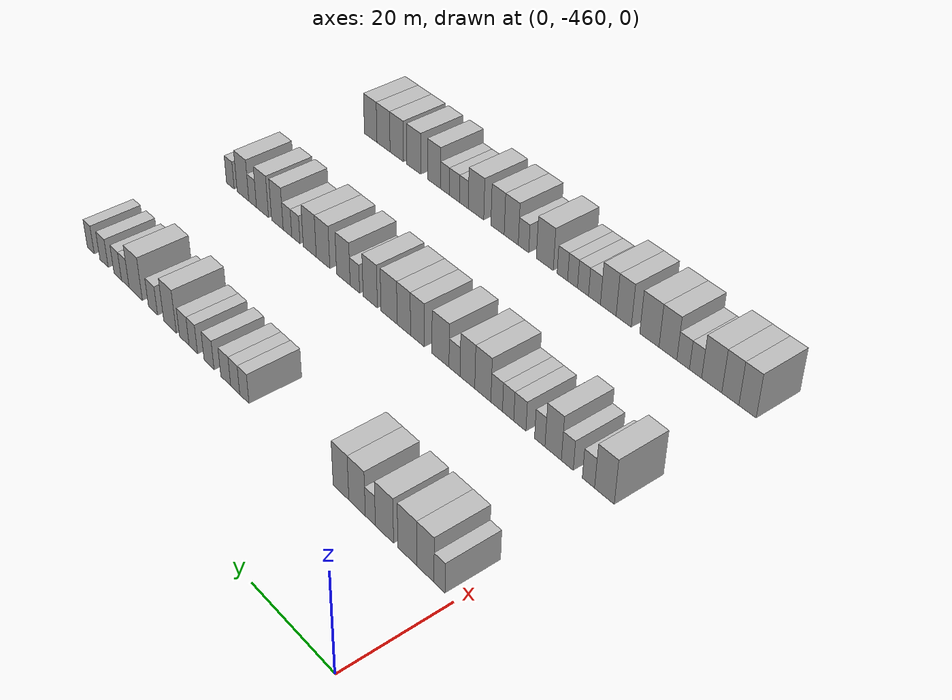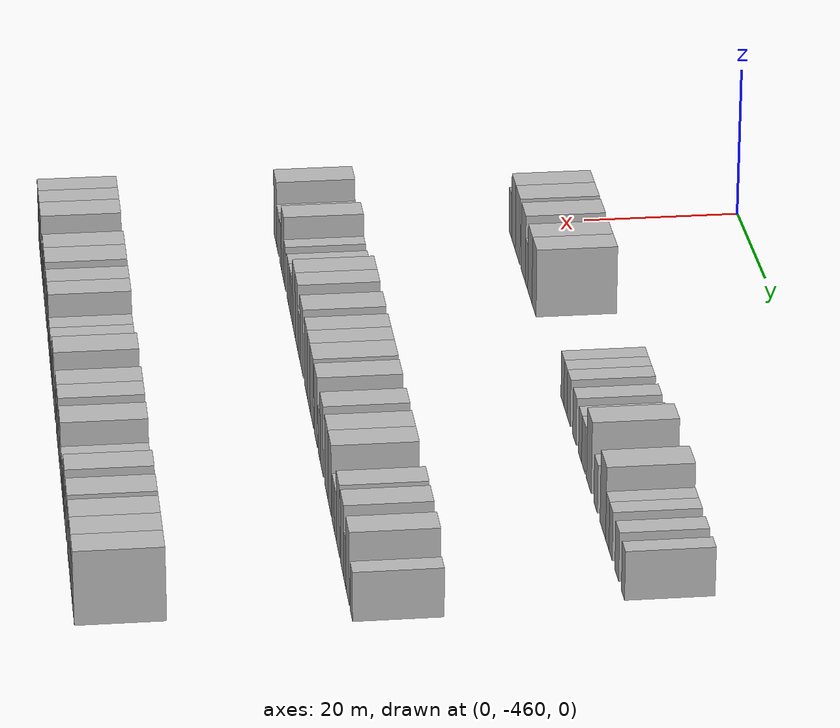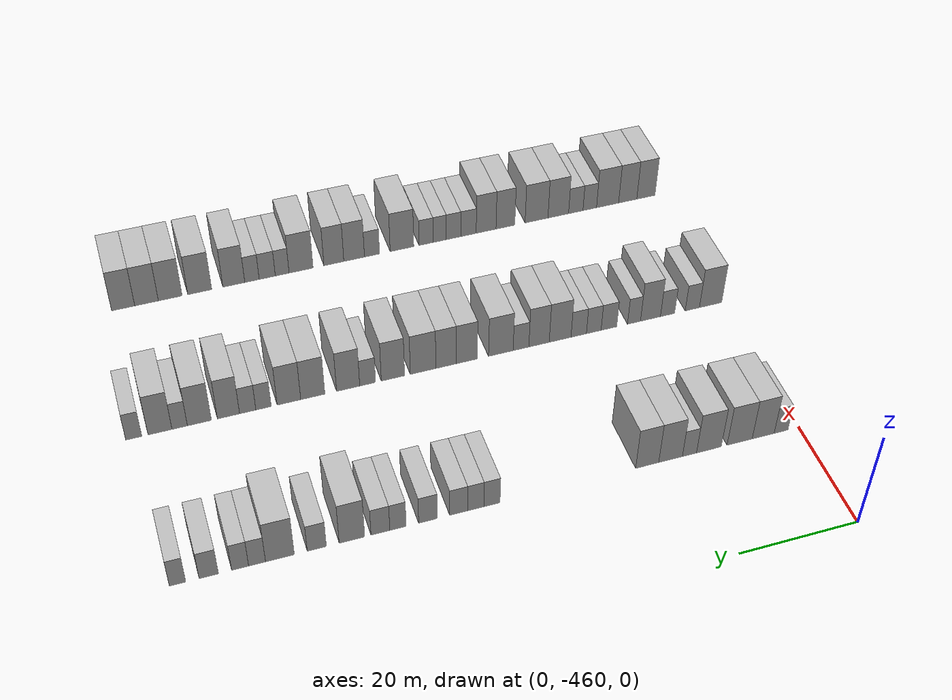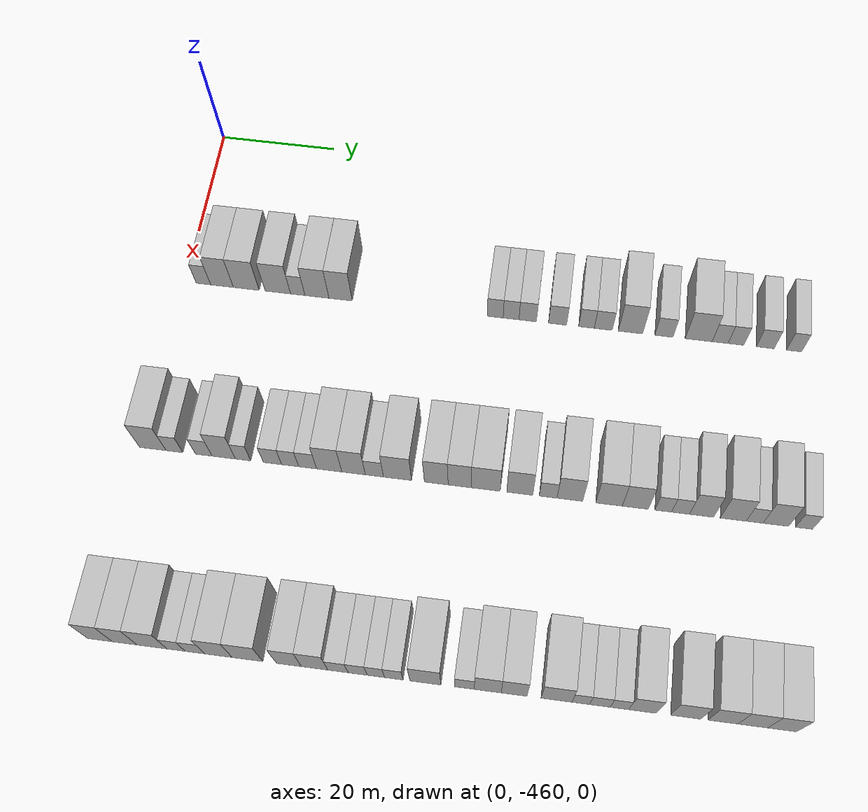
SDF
<sdf version="1.6">
 <world name="default">
  <model name="building_1">
   <static>1</static>
   <pose>25.0000 -456.7684 0 0.000000 0.000000 0.000000</pose>
   <link name="link">
    <pose>0 0 3.00 0 0 0</pose>
    <collision name="collision"><geometry><box><size>10.0000 2.4633 6.0000</size></box></geometry></collision>
    <visual name="visual">
     <cast_shadows>0</cast_shadows>
     <geometry><box><size>10.0000 2.4633 6.0000</size></box></geometry>
     <material>
      <script>
       <uri>model://HANNAS_wall/materials/scripts</uri>
       <uri>model://HANNAS_wall/materials/textures</uri>
       <name>vrc/HANNAS_wall</name>
      </script>
     </material>
    </visual>
   </link>
  </model>
  <model name="building_2">
   <static>1</static>
   <pose>25.0000 -453.5945 0 0.000000 0.000000 0.000000</pose>
   <link name="link">
    <pose>0 0 4.50 0 0 0</pose>
    <collision name="collision"><geometry><box><size>10.0000 3.8844 9.0000</size></box></geometry></collision>
    <visual name="visual">
     <cast_shadows>0</cast_shadows>
     <geometry><box><size>10.0000 3.8844 9.0000</size></box></geometry>
     <material>
      <script>
       <uri>model://HANNAS_wall/materials/scripts</uri>
       <uri>model://HANNAS_wall/materials/textures</uri>
       <name>vrc/HANNAS_wall</name>
      </script>
     </material>
    </visual>
   </link>
  </model>
  <model name="building_3">
   <static>1</static>
   <pose>25.0000 -449.4505 0 0.000000 0.000000 0.000000</pose>
   <link name="link">
    <pose>0 0 4.50 0 0 0</pose>
    <collision name="collision"><geometry><box><size>10.0000 4.4035 9.0000</size></box></geometry></collision>
    <visual name="visual">
     <cast_shadows>0</cast_shadows>
     <geometry><box><size>10.0000 4.4035 9.0000</size></box></geometry>
     <material>
      <script>
       <uri>model://HANNAS_wall/materials/scripts</uri>
       <uri>model://HANNAS_wall/materials/textures</uri>
       <name>vrc/HANNAS_wall</name>
      </script>
     </material>
    </visual>
   </link>
  </model>
  <model name="building_4">
   <static>1</static>
   <pose>25.0000 -444.0910 0 0.000000 0.000000 0.000000</pose>
   <link name="link">
    <pose>0 0 4.50 0 0 0</pose>
    <collision name="collision"><geometry><box><size>10.0000 4.3155 9.0000</size></box></geometry></collision>
    <visual name="visual">
     <cast_shadows>0</cast_shadows>
     <geometry><box><size>10.0000 4.3155 9.0000</size></box></geometry>
     <material>
      <script>
       <uri>model://HANNAS_wall/materials/scripts</uri>
       <uri>model://HANNAS_wall/materials/textures</uri>
       <name>vrc/HANNAS_wall</name>
      </script>
     </material>
    </visual>
   </link>
  </model>
  <model name="building_5">
   <static>1</static>
   <pose>25.0000 -440.7142 0 0.000000 0.000000 0.000000</pose>
   <link name="link">
    <pose>0 0 3.00 0 0 0</pose>
    <collision name="collision"><geometry><box><size>10.0000 2.4382 6.0000</size></box></geometry></collision>
    <visual name="visual">
     <cast_shadows>0</cast_shadows>
     <geometry><box><size>10.0000 2.4382 6.0000</size></box></geometry>
     <material>
      <script>
       <uri>model://HANNAS_wall/materials/scripts</uri>
       <uri>model://HANNAS_wall/materials/textures</uri>
       <name>vrc/HANNAS_wall</name>
      </script>
     </material>
    </visual>
   </link>
  </model>
  <model name="building_6">
   <static>1</static>
   <pose>25.0000 -437.4608 0 0.000000 0.000000 0.000000</pose>
   <link name="link">
    <pose>0 0 4.50 0 0 0</pose>
    <collision name="collision"><geometry><box><size>10.0000 4.0685 9.0000</size></box></geometry></collision>
    <visual name="visual">
     <cast_shadows>0</cast_shadows>
     <geometry><box><size>10.0000 4.0685 9.0000</size></box></geometry>
     <material>
      <script>
       <uri>model://HANNAS_wall/materials/scripts</uri>
       <uri>model://HANNAS_wall/materials/textures</uri>
       <name>vrc/HANNAS_wall</name>
      </script>
     </material>
    </visual>
   </link>
  </model>
  <model name="building_7">
   <static>1</static>
   <pose>25.0000 -433.4576 0 0.000000 0.000000 0.000000</pose>
   <link name="link">
    <pose>0 0 4.50 0 0 0</pose>
    <collision name="collision"><geometry><box><size>10.0000 3.9378 9.0000</size></box></geometry></collision>
    <visual name="visual">
     <cast_shadows>0</cast_shadows>
     <geometry><box><size>10.0000 3.9378 9.0000</size></box></geometry>
     <material>
      <script>
       <uri>model://HANNAS_wall/materials/scripts</uri>
       <uri>model://HANNAS_wall/materials/textures</uri>
       <name>vrc/HANNAS_wall</name>
      </script>
     </material>
    </visual>
   </link>
  </model>
  <model name="building_8">
   <static>1</static>
   <pose>25.0000 -407.5464 0 0.000000 0.000000 0.000000</pose>
   <link name="link">
    <pose>0 0 3.00 0 0 0</pose>
    <collision name="collision"><geometry><box><size>10.0000 2.6282 6.0000</size></box></geometry></collision>
    <visual name="visual">
     <cast_shadows>0</cast_shadows>
     <geometry><box><size>10.0000 2.6282 6.0000</size></box></geometry>
     <material>
      <script>
       <uri>model://HANNAS_wall/materials/scripts</uri>
       <uri>model://HANNAS_wall/materials/textures</uri>
       <name>vrc/HANNAS_wall</name>
      </script>
     </material>
    </visual>
   </link>
  </model>
  <model name="building_9">
   <static>1</static>
   <pose>25.0000 -404.9177 0 0.000000 0.000000 0.000000</pose>
   <link name="link">
    <pose>0 0 3.00 0 0 0</pose>
    <collision name="collision"><geometry><box><size>10.0000 2.6292 6.0000</size></box></geometry></collision>
    <visual name="visual">
     <cast_shadows>0</cast_shadows>
     <geometry><box><size>10.0000 2.6292 6.0000</size></box></geometry>
     <material>
      <script>
       <uri>model://HANNAS_wall/materials/scripts</uri>
       <uri>model://HANNAS_wall/materials/textures</uri>
       <name>vrc/HANNAS_wall</name>
      </script>
     </material>
    </visual>
   </link>
  </model>
  <model name="building_10">
   <static>1</static>
   <pose>25.0000 -402.1576 0 0.000000 0.000000 0.000000</pose>
   <link name="link">
    <pose>0 0 3.00 0 0 0</pose>
    <collision name="collision"><geometry><box><size>10.0000 2.8910 6.0000</size></box></geometry></collision>
    <visual name="visual">
     <cast_shadows>0</cast_shadows>
     <geometry><box><size>10.0000 2.8910 6.0000</size></box></geometry>
     <material>
      <script>
       <uri>model://HANNAS_wall/materials/scripts</uri>
       <uri>model://HANNAS_wall/materials/textures</uri>
       <name>vrc/HANNAS_wall</name>
      </script>
     </material>
    </visual>
   </link>
  </model>
  <model name="building_11">
   <static>1</static>
   <pose>25.0000 -397.2195 0 0.000000 0.000000 0.000000</pose>
   <link name="link">
    <pose>0 0 3.00 0 0 0</pose>
    <collision name="collision"><geometry><box><size>10.0000 2.9851 6.0000</size></box></geometry></collision>
    <visual name="visual">
     <cast_shadows>0</cast_shadows>
     <geometry><box><size>10.0000 2.9851 6.0000</size></box></geometry>
     <material>
      <script>
       <uri>model://HANNAS_wall/materials/scripts</uri>
       <uri>model://HANNAS_wall/materials/textures</uri>
       <name>vrc/HANNAS_wall</name>
      </script>
     </material>
    </visual>
   </link>
  </model>
  <model name="building_12">
   <static>1</static>
   <pose>25.0000 -392.4356 0 0.000000 0.000000 0.000000</pose>
   <link name="link">
    <pose>0 0 3.00 0 0 0</pose>
    <collision name="collision"><geometry><box><size>10.0000 2.5829 6.0000</size></box></geometry></collision>
    <visual name="visual">
     <cast_shadows>0</cast_shadows>
     <geometry><box><size>10.0000 2.5829 6.0000</size></box></geometry>
     <material>
      <script>
       <uri>model://HANNAS_wall/materials/scripts</uri>
       <uri>model://HANNAS_wall/materials/textures</uri>
       <name>vrc/HANNAS_wall</name>
      </script>
     </material>
    </visual>
   </link>
  </model>
  <model name="building_13">
   <static>1</static>
   <pose>25.0000 -389.6625 0 0.000000 0.000000 0.000000</pose>
   <link name="link">
    <pose>0 0 3.00 0 0 0</pose>
    <collision name="collision"><geometry><box><size>10.0000 2.9632 6.0000</size></box></geometry></collision>
    <visual name="visual">
     <cast_shadows>0</cast_shadows>
     <geometry><box><size>10.0000 2.9632 6.0000</size></box></geometry>
     <material>
      <script>
       <uri>model://HANNAS_wall/materials/scripts</uri>
       <uri>model://HANNAS_wall/materials/textures</uri>
       <name>vrc/HANNAS_wall</name>
      </script>
     </material>
    </visual>
   </link>
  </model>
  <model name="building_14">
   <static>1</static>
   <pose>25.0000 -385.1881 0 0.000000 0.000000 0.000000</pose>
   <link name="link">
    <pose>0 0 4.50 0 0 0</pose>
    <collision name="collision"><geometry><box><size>10.0000 3.9857 9.0000</size></box></geometry></collision>
    <visual name="visual">
     <cast_shadows>0</cast_shadows>
     <geometry><box><size>10.0000 3.9857 9.0000</size></box></geometry>
     <material>
      <script>
       <uri>model://HANNAS_wall/materials/scripts</uri>
       <uri>model://HANNAS_wall/materials/textures</uri>
       <name>vrc/HANNAS_wall</name>
      </script>
     </material>
    </visual>
   </link>
  </model>
  <model name="building_15">
   <static>1</static>
   <pose>25.0000 -379.7140 0 0.000000 0.000000 0.000000</pose>
   <link name="link">
    <pose>0 0 3.00 0 0 0</pose>
    <collision name="collision"><geometry><box><size>10.0000 2.9623 6.0000</size></box></geometry></collision>
    <visual name="visual">
     <cast_shadows>0</cast_shadows>
     <geometry><box><size>10.0000 2.9623 6.0000</size></box></geometry>
     <material>
      <script>
       <uri>model://HANNAS_wall/materials/scripts</uri>
       <uri>model://HANNAS_wall/materials/textures</uri>
       <name>vrc/HANNAS_wall</name>
      </script>
     </material>
    </visual>
   </link>
  </model>
  <model name="building_16">
   <static>1</static>
   <pose>25.0000 -374.0256 0 0.000000 0.000000 0.000000</pose>
   <link name="link">
    <pose>0 0 4.50 0 0 0</pose>
    <collision name="collision"><geometry><box><size>10.0000 4.4146 9.0000</size></box></geometry></collision>
    <visual name="visual">
     <cast_shadows>0</cast_shadows>
     <geometry><box><size>10.0000 4.4146 9.0000</size></box></geometry>
     <material>
      <script>
       <uri>model://HANNAS_wall/materials/scripts</uri>
       <uri>model://HANNAS_wall/materials/textures</uri>
       <name>vrc/HANNAS_wall</name>
      </script>
     </material>
    </visual>
   </link>
  </model>
  <model name="building_17">
   <static>1</static>
   <pose>25.0000 -370.5286 0 0.000000 0.000000 0.000000</pose>
   <link name="link">
    <pose>0 0 3.00 0 0 0</pose>
    <collision name="collision"><geometry><box><size>10.0000 2.5793 6.0000</size></box></geometry></collision>
    <visual name="visual">
     <cast_shadows>0</cast_shadows>
     <geometry><box><size>10.0000 2.5793 6.0000</size></box></geometry>
     <material>
      <script>
       <uri>model://HANNAS_wall/materials/scripts</uri>
       <uri>model://HANNAS_wall/materials/textures</uri>
       <name>vrc/HANNAS_wall</name>
      </script>
     </material>
    </visual>
   </link>
  </model>
  <model name="building_18">
   <static>1</static>
   <pose>25.0000 -367.9509 0 0.000000 0.000000 0.000000</pose>
   <link name="link">
    <pose>0 0 3.00 0 0 0</pose>
    <collision name="collision"><geometry><box><size>10.0000 2.5762 6.0000</size></box></geometry></collision>
    <visual name="visual">
     <cast_shadows>0</cast_shadows>
     <geometry><box><size>10.0000 2.5762 6.0000</size></box></geometry>
     <material>
      <script>
       <uri>model://HANNAS_wall/materials/scripts</uri>
       <uri>model://HANNAS_wall/materials/textures</uri>
       <name>vrc/HANNAS_wall</name>
      </script>
     </material>
    </visual>
   </link>
  </model>
  <model name="building_19">
   <static>1</static>
   <pose>25.0000 -363.2097 0 0.000000 0.000000 0.000000</pose>
   <link name="link">
    <pose>0 0 3.00 0 0 0</pose>
    <collision name="collision"><geometry><box><size>10.0000 2.9062 6.0000</size></box></geometry></collision>
    <visual name="visual">
     <cast_shadows>0</cast_shadows>
     <geometry><box><size>10.0000 2.9062 6.0000</size></box></geometry>
     <material>
      <script>
       <uri>model://HANNAS_wall/materials/scripts</uri>
       <uri>model://HANNAS_wall/materials/textures</uri>
       <name>vrc/HANNAS_wall</name>
      </script>
     </material>
    </visual>
   </link>
  </model>
  <model name="building_20">
   <static>1</static>
   <pose>25.0000 -358.5313 0 0.000000 0.000000 0.000000</pose>
   <link name="link">
    <pose>0 0 3.00 0 0 0</pose>
    <collision name="collision"><geometry><box><size>10.0000 2.4505 6.0000</size></box></geometry></collision>
    <visual name="visual">
     <cast_shadows>0</cast_shadows>
     <geometry><box><size>10.0000 2.4505 6.0000</size></box></geometry>
     <material>
      <script>
       <uri>model://HANNAS_wall/materials/scripts</uri>
       <uri>model://HANNAS_wall/materials/textures</uri>
       <name>vrc/HANNAS_wall</name>
      </script>
     </material>
    </visual>
   </link>
  </model>
  <model name="building_228">
   <static>1</static>
   <pose>55.0000 -457.8840 0 0.000000 0.000000 0.000000</pose>
   <link name="link">
    <pose>0 0 4.50 0 0 0</pose>
    <collision name="collision"><geometry><box><size>10.0000 4.2319 9.0000</size></box></geometry></collision>
    <visual name="visual">
     <cast_shadows>0</cast_shadows>
     <geometry><box><size>10.0000 4.2319 9.0000</size></box></geometry>
     <material>
      <script>
       <uri>model://HANNAS_wall/materials/scripts</uri>
       <uri>model://HANNAS_wall/materials/textures</uri>
       <name>vrc/HANNAS_wall</name>
      </script>
     </material>
    </visual>
   </link>
  </model>
  <model name="building_229">
   <static>1</static>
   <pose>55.0000 -454.4255 0 0.000000 0.000000 0.000000</pose>
   <link name="link">
    <pose>0 0 3.00 0 0 0</pose>
    <collision name="collision"><geometry><box><size>10.0000 2.6851 6.0000</size></box></geometry></collision>
    <visual name="visual">
     <cast_shadows>0</cast_shadows>
     <geometry><box><size>10.0000 2.6851 6.0000</size></box></geometry>
     <material>
      <script>
       <uri>model://HANNAS_wall/materials/scripts</uri>
       <uri>model://HANNAS_wall/materials/textures</uri>
       <name>vrc/HANNAS_wall</name>
      </script>
     </material>
    </visual>
   </link>
  </model>
  <model name="building_230">
   <static>1</static>
   <pose>55.0000 -449.7500 0 0.000000 0.000000 0.000000</pose>
   <link name="link">
    <pose>0 0 3.00 0 0 0</pose>
    <collision name="collision"><geometry><box><size>10.0000 2.6659 6.0000</size></box></geometry></collision>
    <visual name="visual">
     <cast_shadows>0</cast_shadows>
     <geometry><box><size>10.0000 2.6659 6.0000</size></box></geometry>
     <material>
      <script>
       <uri>model://HANNAS_wall/materials/scripts</uri>
       <uri>model://HANNAS_wall/materials/textures</uri>
       <name>vrc/HANNAS_wall</name>
      </script>
     </material>
    </visual>
   </link>
  </model>
  <model name="building_231">
   <static>1</static>
   <pose>55.0000 -446.5519 0 0.000000 0.000000 0.000000</pose>
   <link name="link">
    <pose>0 0 4.50 0 0 0</pose>
    <collision name="collision"><geometry><box><size>10.0000 3.7303 9.0000</size></box></geometry></collision>
    <visual name="visual">
     <cast_shadows>0</cast_shadows>
     <geometry><box><size>10.0000 3.7303 9.0000</size></box></geometry>
     <material>
      <script>
       <uri>model://HANNAS_wall/materials/scripts</uri>
       <uri>model://HANNAS_wall/materials/textures</uri>
       <name>vrc/HANNAS_wall</name>
      </script>
     </material>
    </visual>
   </link>
  </model>
  <model name="building_232">
   <static>1</static>
   <pose>55.0000 -443.4809 0 0.000000 0.000000 0.000000</pose>
   <link name="link">
    <pose>0 0 3.00 0 0 0</pose>
    <collision name="collision"><geometry><box><size>10.0000 2.4115 6.0000</size></box></geometry></collision>
    <visual name="visual">
     <cast_shadows>0</cast_shadows>
     <geometry><box><size>10.0000 2.4115 6.0000</size></box></geometry>
     <material>
      <script>
       <uri>model://HANNAS_wall/materials/scripts</uri>
       <uri>model://HANNAS_wall/materials/textures</uri>
       <name>vrc/HANNAS_wall</name>
      </script>
     </material>
    </visual>
   </link>
  </model>
  <model name="building_233">
   <static>1</static>
   <pose>55.0000 -438.8318 0 0.000000 0.000000 0.000000</pose>
   <link name="link">
    <pose>0 0 3.00 0 0 0</pose>
    <collision name="collision"><geometry><box><size>10.0000 2.8868 6.0000</size></box></geometry></collision>
    <visual name="visual">
     <cast_shadows>0</cast_shadows>
     <geometry><box><size>10.0000 2.8868 6.0000</size></box></geometry>
     <material>
      <script>
       <uri>model://HANNAS_wall/materials/scripts</uri>
       <uri>model://HANNAS_wall/materials/textures</uri>
       <name>vrc/HANNAS_wall</name>
      </script>
     </material>
    </visual>
   </link>
  </model>
  <model name="building_234">
   <static>1</static>
   <pose>55.0000 -436.0432 0 0.000000 0.000000 0.000000</pose>
   <link name="link">
    <pose>0 0 3.00 0 0 0</pose>
    <collision name="collision"><geometry><box><size>10.0000 2.6904 6.0000</size></box></geometry></collision>
    <visual name="visual">
     <cast_shadows>0</cast_shadows>
     <geometry><box><size>10.0000 2.6904 6.0000</size></box></geometry>
     <material>
      <script>
       <uri>model://HANNAS_wall/materials/scripts</uri>
       <uri>model://HANNAS_wall/materials/textures</uri>
       <name>vrc/HANNAS_wall</name>
      </script>
     </material>
    </visual>
   </link>
  </model>
  <model name="building_235">
   <static>1</static>
   <pose>55.0000 -433.2865 0 0.000000 0.000000 0.000000</pose>
   <link name="link">
    <pose>0 0 3.00 0 0 0</pose>
    <collision name="collision"><geometry><box><size>10.0000 2.8230 6.0000</size></box></geometry></collision>
    <visual name="visual">
     <cast_shadows>0</cast_shadows>
     <geometry><box><size>10.0000 2.8230 6.0000</size></box></geometry>
     <material>
      <script>
       <uri>model://HANNAS_wall/materials/scripts</uri>
       <uri>model://HANNAS_wall/materials/textures</uri>
       <name>vrc/HANNAS_wall</name>
      </script>
     </material>
    </visual>
   </link>
  </model>
  <model name="building_236">
   <static>1</static>
   <pose>55.0000 -429.8898 0 0.000000 0.000000 0.000000</pose>
   <link name="link">
    <pose>0 0 4.50 0 0 0</pose>
    <collision name="collision"><geometry><box><size>10.0000 3.9704 9.0000</size></box></geometry></collision>
    <visual name="visual">
     <cast_shadows>0</cast_shadows>
     <geometry><box><size>10.0000 3.9704 9.0000</size></box></geometry>
     <material>
      <script>
       <uri>model://HANNAS_wall/materials/scripts</uri>
       <uri>model://HANNAS_wall/materials/textures</uri>
       <name>vrc/HANNAS_wall</name>
      </script>
     </material>
    </visual>
   </link>
  </model>
  <model name="building_237">
   <static>1</static>
   <pose>55.0000 -426.0602 0 0.000000 0.000000 0.000000</pose>
   <link name="link">
    <pose>0 0 4.50 0 0 0</pose>
    <collision name="collision"><geometry><box><size>10.0000 3.6887 9.0000</size></box></geometry></collision>
    <visual name="visual">
     <cast_shadows>0</cast_shadows>
     <geometry><box><size>10.0000 3.6887 9.0000</size></box></geometry>
     <material>
      <script>
       <uri>model://HANNAS_wall/materials/scripts</uri>
       <uri>model://HANNAS_wall/materials/textures</uri>
       <name>vrc/HANNAS_wall</name>
      </script>
     </material>
    </visual>
   </link>
  </model>
  <model name="building_238">
   <static>1</static>
   <pose>55.0000 -422.8041 0 0.000000 0.000000 0.000000</pose>
   <link name="link">
    <pose>0 0 3.00 0 0 0</pose>
    <collision name="collision"><geometry><box><size>10.0000 2.8235 6.0000</size></box></geometry></collision>
    <visual name="visual">
     <cast_shadows>0</cast_shadows>
     <geometry><box><size>10.0000 2.8235 6.0000</size></box></geometry>
     <material>
      <script>
       <uri>model://HANNAS_wall/materials/scripts</uri>
       <uri>model://HANNAS_wall/materials/textures</uri>
       <name>vrc/HANNAS_wall</name>
      </script>
     </material>
    </visual>
   </link>
  </model>
  <model name="building_239">
   <static>1</static>
   <pose>55.0000 -419.1923 0 0.000000 0.000000 0.000000</pose>
   <link name="link">
    <pose>0 0 4.50 0 0 0</pose>
    <collision name="collision"><geometry><box><size>10.0000 4.4000 9.0000</size></box></geometry></collision>
    <visual name="visual">
     <cast_shadows>0</cast_shadows>
     <geometry><box><size>10.0000 4.4000 9.0000</size></box></geometry>
     <material>
      <script>
       <uri>model://HANNAS_wall/materials/scripts</uri>
       <uri>model://HANNAS_wall/materials/textures</uri>
       <name>vrc/HANNAS_wall</name>
      </script>
     </material>
    </visual>
   </link>
  </model>
  <model name="building_240">
   <static>1</static>
   <pose>55.0000 -413.1427 0 0.000000 0.000000 0.000000</pose>
   <link name="link">
    <pose>0 0 4.50 0 0 0</pose>
    <collision name="collision"><geometry><box><size>10.0000 3.6992 9.0000</size></box></geometry></collision>
    <visual name="visual">
     <cast_shadows>0</cast_shadows>
     <geometry><box><size>10.0000 3.6992 9.0000</size></box></geometry>
     <material>
      <script>
       <uri>model://HANNAS_wall/materials/scripts</uri>
       <uri>model://HANNAS_wall/materials/textures</uri>
       <name>vrc/HANNAS_wall</name>
      </script>
     </material>
    </visual>
   </link>
  </model>
  <model name="building_241">
   <static>1</static>
   <pose>55.0000 -409.4834 0 0.000000 0.000000 0.000000</pose>
   <link name="link">
    <pose>0 0 4.50 0 0 0</pose>
    <collision name="collision"><geometry><box><size>10.0000 3.6194 9.0000</size></box></geometry></collision>
    <visual name="visual">
     <cast_shadows>0</cast_shadows>
     <geometry><box><size>10.0000 3.6194 9.0000</size></box></geometry>
     <material>
      <script>
       <uri>model://HANNAS_wall/materials/scripts</uri>
       <uri>model://HANNAS_wall/materials/textures</uri>
       <name>vrc/HANNAS_wall</name>
      </script>
     </material>
    </visual>
   </link>
  </model>
  <model name="building_242">
   <static>1</static>
   <pose>55.0000 -405.4434 0 0.000000 0.000000 0.000000</pose>
   <link name="link">
    <pose>0 0 4.50 0 0 0</pose>
    <collision name="collision"><geometry><box><size>10.0000 4.4608 9.0000</size></box></geometry></collision>
    <visual name="visual">
     <cast_shadows>0</cast_shadows>
     <geometry><box><size>10.0000 4.4608 9.0000</size></box></geometry>
     <material>
      <script>
       <uri>model://HANNAS_wall/materials/scripts</uri>
       <uri>model://HANNAS_wall/materials/textures</uri>
       <name>vrc/HANNAS_wall</name>
      </script>
     </material>
    </visual>
   </link>
  </model>
  <model name="building_243">
   <static>1</static>
   <pose>55.0000 -400.2008 0 0.000000 0.000000 0.000000</pose>
   <link name="link">
    <pose>0 0 4.50 0 0 0</pose>
    <collision name="collision"><geometry><box><size>10.0000 4.0244 9.0000</size></box></geometry></collision>
    <visual name="visual">
     <cast_shadows>0</cast_shadows>
     <geometry><box><size>10.0000 4.0244 9.0000</size></box></geometry>
     <material>
      <script>
       <uri>model://HANNAS_wall/materials/scripts</uri>
       <uri>model://HANNAS_wall/materials/textures</uri>
       <name>vrc/HANNAS_wall</name>
      </script>
     </material>
    </visual>
   </link>
  </model>
  <model name="building_244">
   <static>1</static>
   <pose>55.0000 -395.8288 0 0.000000 0.000000 0.000000</pose>
   <link name="link">
    <pose>0 0 3.00 0 0 0</pose>
    <collision name="collision"><geometry><box><size>10.0000 2.7195 6.0000</size></box></geometry></collision>
    <visual name="visual">
     <cast_shadows>0</cast_shadows>
     <geometry><box><size>10.0000 2.7195 6.0000</size></box></geometry>
     <material>
      <script>
       <uri>model://HANNAS_wall/materials/scripts</uri>
       <uri>model://HANNAS_wall/materials/textures</uri>
       <name>vrc/HANNAS_wall</name>
      </script>
     </material>
    </visual>
   </link>
  </model>
  <model name="building_245">
   <static>1</static>
   <pose>55.0000 -392.4910 0 0.000000 0.000000 0.000000</pose>
   <link name="link">
    <pose>0 0 4.50 0 0 0</pose>
    <collision name="collision"><geometry><box><size>10.0000 3.9562 9.0000</size></box></geometry></collision>
    <visual name="visual">
     <cast_shadows>0</cast_shadows>
     <geometry><box><size>10.0000 3.9562 9.0000</size></box></geometry>
     <material>
      <script>
       <uri>model://HANNAS_wall/materials/scripts</uri>
       <uri>model://HANNAS_wall/materials/textures</uri>
       <name>vrc/HANNAS_wall</name>
      </script>
     </material>
    </visual>
   </link>
  </model>
  <model name="building_246">
   <static>1</static>
   <pose>55.0000 -386.4732 0 0.000000 0.000000 0.000000</pose>
   <link name="link">
    <pose>0 0 4.50 0 0 0</pose>
    <collision name="collision"><geometry><box><size>10.0000 4.0794 9.0000</size></box></geometry></collision>
    <visual name="visual">
     <cast_shadows>0</cast_shadows>
     <geometry><box><size>10.0000 4.0794 9.0000</size></box></geometry>
     <material>
      <script>
       <uri>model://HANNAS_wall/materials/scripts</uri>
       <uri>model://HANNAS_wall/materials/textures</uri>
       <name>vrc/HANNAS_wall</name>
      </script>
     </material>
    </visual>
   </link>
  </model>
  <model name="building_247">
   <static>1</static>
   <pose>55.0000 -382.4496 0 0.000000 0.000000 0.000000</pose>
   <link name="link">
    <pose>0 0 4.50 0 0 0</pose>
    <collision name="collision"><geometry><box><size>10.0000 3.9677 9.0000</size></box></geometry></collision>
    <visual name="visual">
     <cast_shadows>0</cast_shadows>
     <geometry><box><size>10.0000 3.9677 9.0000</size></box></geometry>
     <material>
      <script>
       <uri>model://HANNAS_wall/materials/scripts</uri>
       <uri>model://HANNAS_wall/materials/textures</uri>
       <name>vrc/HANNAS_wall</name>
      </script>
     </material>
    </visual>
   </link>
  </model>
  <model name="building_248">
   <static>1</static>
   <pose>55.0000 -378.1832 0 0.000000 0.000000 0.000000</pose>
   <link name="link">
    <pose>0 0 3.00 0 0 0</pose>
    <collision name="collision"><geometry><box><size>10.0000 2.5650 6.0000</size></box></geometry></collision>
    <visual name="visual">
     <cast_shadows>0</cast_shadows>
     <geometry><box><size>10.0000 2.5650 6.0000</size></box></geometry>
     <material>
      <script>
       <uri>model://HANNAS_wall/materials/scripts</uri>
       <uri>model://HANNAS_wall/materials/textures</uri>
       <name>vrc/HANNAS_wall</name>
      </script>
     </material>
    </visual>
   </link>
  </model>
  <model name="building_249">
   <static>1</static>
   <pose>55.0000 -375.5476 0 0.000000 0.000000 0.000000</pose>
   <link name="link">
    <pose>0 0 3.00 0 0 0</pose>
    <collision name="collision"><geometry><box><size>10.0000 2.7063 6.0000</size></box></geometry></collision>
    <visual name="visual">
     <cast_shadows>0</cast_shadows>
     <geometry><box><size>10.0000 2.7063 6.0000</size></box></geometry>
     <material>
      <script>
       <uri>model://HANNAS_wall/materials/scripts</uri>
       <uri>model://HANNAS_wall/materials/textures</uri>
       <name>vrc/HANNAS_wall</name>
      </script>
     </material>
    </visual>
   </link>
  </model>
  <model name="building_250">
   <static>1</static>
   <pose>55.0000 -372.3600 0 0.000000 0.000000 0.000000</pose>
   <link name="link">
    <pose>0 0 4.50 0 0 0</pose>
    <collision name="collision"><geometry><box><size>10.0000 3.6689 9.0000</size></box></geometry></collision>
    <visual name="visual">
     <cast_shadows>0</cast_shadows>
     <geometry><box><size>10.0000 3.6689 9.0000</size></box></geometry>
     <material>
      <script>
       <uri>model://HANNAS_wall/materials/scripts</uri>
       <uri>model://HANNAS_wall/materials/textures</uri>
       <name>vrc/HANNAS_wall</name>
      </script>
     </material>
    </visual>
   </link>
  </model>
  <model name="building_251">
   <static>1</static>
   <pose>55.0000 -367.5598 0 0.000000 0.000000 0.000000</pose>
   <link name="link">
    <pose>0 0 4.50 0 0 0</pose>
    <collision name="collision"><geometry><box><size>10.0000 3.9316 9.0000</size></box></geometry></collision>
    <visual name="visual">
     <cast_shadows>0</cast_shadows>
     <geometry><box><size>10.0000 3.9316 9.0000</size></box></geometry>
     <material>
      <script>
       <uri>model://HANNAS_wall/materials/scripts</uri>
       <uri>model://HANNAS_wall/materials/textures</uri>
       <name>vrc/HANNAS_wall</name>
      </script>
     </material>
    </visual>
   </link>
  </model>
  <model name="building_252">
   <static>1</static>
   <pose>55.0000 -364.3334 0 0.000000 0.000000 0.000000</pose>
   <link name="link">
    <pose>0 0 3.00 0 0 0</pose>
    <collision name="collision"><geometry><box><size>10.0000 2.5211 6.0000</size></box></geometry></collision>
    <visual name="visual">
     <cast_shadows>0</cast_shadows>
     <geometry><box><size>10.0000 2.5211 6.0000</size></box></geometry>
     <material>
      <script>
       <uri>model://HANNAS_wall/materials/scripts</uri>
       <uri>model://HANNAS_wall/materials/textures</uri>
       <name>vrc/HANNAS_wall</name>
      </script>
     </material>
    </visual>
   </link>
  </model>
  <model name="building_253">
   <static>1</static>
   <pose>55.0000 -361.1275 0 0.000000 0.000000 0.000000</pose>
   <link name="link">
    <pose>0 0 4.50 0 0 0</pose>
    <collision name="collision"><geometry><box><size>10.0000 3.8908 9.0000</size></box></geometry></collision>
    <visual name="visual">
     <cast_shadows>0</cast_shadows>
     <geometry><box><size>10.0000 3.8908 9.0000</size></box></geometry>
     <material>
      <script>
       <uri>model://HANNAS_wall/materials/scripts</uri>
       <uri>model://HANNAS_wall/materials/textures</uri>
       <name>vrc/HANNAS_wall</name>
      </script>
     </material>
    </visual>
   </link>
  </model>
  <model name="building_254">
   <static>1</static>
   <pose>55.0000 -356.8873 0 0.000000 0.000000 0.000000</pose>
   <link name="link">
    <pose>0 0 3.00 0 0 0</pose>
    <collision name="collision"><geometry><box><size>10.0000 2.5897 6.0000</size></box></geometry></collision>
    <visual name="visual">
     <cast_shadows>0</cast_shadows>
     <geometry><box><size>10.0000 2.5897 6.0000</size></box></geometry>
     <material>
      <script>
       <uri>model://HANNAS_wall/materials/scripts</uri>
       <uri>model://HANNAS_wall/materials/textures</uri>
       <name>vrc/HANNAS_wall</name>
      </script>
     </material>
    </visual>
   </link>
  </model>
  <model name="building_455">
   <static>1</static>
   <pose>85.0000 -458.1586 0 0.000000 0.000000 0.000000</pose>
   <link name="link">
    <pose>0 0 4.50 0 0 0</pose>
    <collision name="collision"><geometry><box><size>10.0000 3.6827 9.0000</size></box></geometry></collision>
    <visual name="visual">
     <cast_shadows>0</cast_shadows>
     <geometry><box><size>10.0000 3.6827 9.0000</size></box></geometry>
     <material>
      <script>
       <uri>model://HANNAS_wall/materials/scripts</uri>
       <uri>model://HANNAS_wall/materials/textures</uri>
       <name>vrc/HANNAS_wall</name>
      </script>
     </material>
    </visual>
   </link>
  </model>
  <model name="building_456">
   <static>1</static>
   <pose>85.0000 -454.4858 0 0.000000 0.000000 0.000000</pose>
   <link name="link">
    <pose>0 0 4.50 0 0 0</pose>
    <collision name="collision"><geometry><box><size>10.0000 3.6629 9.0000</size></box></geometry></collision>
    <visual name="visual">
     <cast_shadows>0</cast_shadows>
     <geometry><box><size>10.0000 3.6629 9.0000</size></box></geometry>
     <material>
      <script>
       <uri>model://HANNAS_wall/materials/scripts</uri>
       <uri>model://HANNAS_wall/materials/textures</uri>
       <name>vrc/HANNAS_wall</name>
      </script>
     </material>
    </visual>
   </link>
  </model>
  <model name="building_457">
   <static>1</static>
   <pose>85.0000 -450.4450 0 0.000000 0.000000 0.000000</pose>
   <link name="link">
    <pose>0 0 4.50 0 0 0</pose>
    <collision name="collision"><geometry><box><size>10.0000 4.4188 9.0000</size></box></geometry></collision>
    <visual name="visual">
     <cast_shadows>0</cast_shadows>
     <geometry><box><size>10.0000 4.4188 9.0000</size></box></geometry>
     <material>
      <script>
       <uri>model://HANNAS_wall/materials/scripts</uri>
       <uri>model://HANNAS_wall/materials/textures</uri>
       <name>vrc/HANNAS_wall</name>
      </script>
     </material>
    </visual>
   </link>
  </model>
  <model name="building_458">
   <static>1</static>
   <pose>85.0000 -446.8847 0 0.000000 0.000000 0.000000</pose>
   <link name="link">
    <pose>0 0 3.00 0 0 0</pose>
    <collision name="collision"><geometry><box><size>10.0000 2.7017 6.0000</size></box></geometry></collision>
    <visual name="visual">
     <cast_shadows>0</cast_shadows>
     <geometry><box><size>10.0000 2.7017 6.0000</size></box></geometry>
     <material>
      <script>
       <uri>model://HANNAS_wall/materials/scripts</uri>
       <uri>model://HANNAS_wall/materials/textures</uri>
       <name>vrc/HANNAS_wall</name>
      </script>
     </material>
    </visual>
   </link>
  </model>
  <model name="building_459">
   <static>1</static>
   <pose>85.0000 -444.1049 0 0.000000 0.000000 0.000000</pose>
   <link name="link">
    <pose>0 0 3.00 0 0 0</pose>
    <collision name="collision"><geometry><box><size>10.0000 2.8580 6.0000</size></box></geometry></collision>
    <visual name="visual">
     <cast_shadows>0</cast_shadows>
     <geometry><box><size>10.0000 2.8580 6.0000</size></box></geometry>
     <material>
      <script>
       <uri>model://HANNAS_wall/materials/scripts</uri>
       <uri>model://HANNAS_wall/materials/textures</uri>
       <name>vrc/HANNAS_wall</name>
      </script>
     </material>
    </visual>
   </link>
  </model>
  <model name="building_460">
   <static>1</static>
   <pose>85.0000 -440.6379 0 0.000000 0.000000 0.000000</pose>
   <link name="link">
    <pose>0 0 4.50 0 0 0</pose>
    <collision name="collision"><geometry><box><size>10.0000 4.0759 9.0000</size></box></geometry></collision>
    <visual name="visual">
     <cast_shadows>0</cast_shadows>
     <geometry><box><size>10.0000 4.0759 9.0000</size></box></geometry>
     <material>
      <script>
       <uri>model://HANNAS_wall/materials/scripts</uri>
       <uri>model://HANNAS_wall/materials/textures</uri>
       <name>vrc/HANNAS_wall</name>
      </script>
     </material>
    </visual>
   </link>
  </model>
  <model name="building_461">
   <static>1</static>
   <pose>85.0000 -436.3508 0 0.000000 0.000000 0.000000</pose>
   <link name="link">
    <pose>0 0 4.50 0 0 0</pose>
    <collision name="collision"><geometry><box><size>10.0000 4.4982 9.0000</size></box></geometry></collision>
    <visual name="visual">
     <cast_shadows>0</cast_shadows>
     <geometry><box><size>10.0000 4.4982 9.0000</size></box></geometry>
     <material>
      <script>
       <uri>model://HANNAS_wall/materials/scripts</uri>
       <uri>model://HANNAS_wall/materials/textures</uri>
       <name>vrc/HANNAS_wall</name>
      </script>
     </material>
    </visual>
   </link>
  </model>
  <model name="building_462">
   <static>1</static>
   <pose>85.0000 -430.2763 0 0.000000 0.000000 0.000000</pose>
   <link name="link">
    <pose>0 0 4.50 0 0 0</pose>
    <collision name="collision"><geometry><box><size>10.0000 3.6508 9.0000</size></box></geometry></collision>
    <visual name="visual">
     <cast_shadows>0</cast_shadows>
     <geometry><box><size>10.0000 3.6508 9.0000</size></box></geometry>
     <material>
      <script>
       <uri>model://HANNAS_wall/materials/scripts</uri>
       <uri>model://HANNAS_wall/materials/textures</uri>
       <name>vrc/HANNAS_wall</name>
      </script>
     </material>
    </visual>
   </link>
  </model>
  <model name="building_463">
   <static>1</static>
   <pose>85.0000 -426.5328 0 0.000000 0.000000 0.000000</pose>
   <link name="link">
    <pose>0 0 4.50 0 0 0</pose>
    <collision name="collision"><geometry><box><size>10.0000 3.8361 9.0000</size></box></geometry></collision>
    <visual name="visual">
     <cast_shadows>0</cast_shadows>
     <geometry><box><size>10.0000 3.8361 9.0000</size></box></geometry>
     <material>
      <script>
       <uri>model://HANNAS_wall/materials/scripts</uri>
       <uri>model://HANNAS_wall/materials/textures</uri>
       <name>vrc/HANNAS_wall</name>
      </script>
     </material>
    </visual>
   </link>
  </model>
  <model name="building_464">
   <static>1</static>
   <pose>85.0000 -423.1342 0 0.000000 0.000000 0.000000</pose>
   <link name="link">
    <pose>0 0 3.00 0 0 0</pose>
    <collision name="collision"><geometry><box><size>10.0000 2.9610 6.0000</size></box></geometry></collision>
    <visual name="visual">
     <cast_shadows>0</cast_shadows>
     <geometry><box><size>10.0000 2.9610 6.0000</size></box></geometry>
     <material>
      <script>
       <uri>model://HANNAS_wall/materials/scripts</uri>
       <uri>model://HANNAS_wall/materials/textures</uri>
       <name>vrc/HANNAS_wall</name>
      </script>
     </material>
    </visual>
   </link>
  </model>
  <model name="building_465">
   <static>1</static>
   <pose>85.0000 -420.2741 0 0.000000 0.000000 0.000000</pose>
   <link name="link">
    <pose>0 0 3.00 0 0 0</pose>
    <collision name="collision"><geometry><box><size>10.0000 2.7594 6.0000</size></box></geometry></collision>
    <visual name="visual">
     <cast_shadows>0</cast_shadows>
     <geometry><box><size>10.0000 2.7594 6.0000</size></box></geometry>
     <material>
      <script>
       <uri>model://HANNAS_wall/materials/scripts</uri>
       <uri>model://HANNAS_wall/materials/textures</uri>
       <name>vrc/HANNAS_wall</name>
      </script>
     </material>
    </visual>
   </link>
  </model>
  <model name="building_466">
   <static>1</static>
   <pose>85.0000 -417.6364 0 0.000000 0.000000 0.000000</pose>
   <link name="link">
    <pose>0 0 3.00 0 0 0</pose>
    <collision name="collision"><geometry><box><size>10.0000 2.5160 6.0000</size></box></geometry></collision>
    <visual name="visual">
     <cast_shadows>0</cast_shadows>
     <geometry><box><size>10.0000 2.5160 6.0000</size></box></geometry>
     <material>
      <script>
       <uri>model://HANNAS_wall/materials/scripts</uri>
       <uri>model://HANNAS_wall/materials/textures</uri>
       <name>vrc/HANNAS_wall</name>
      </script>
     </material>
    </visual>
   </link>
  </model>
  <model name="building_467">
   <static>1</static>
   <pose>85.0000 -415.0346 0 0.000000 0.000000 0.000000</pose>
   <link name="link">
    <pose>0 0 3.00 0 0 0</pose>
    <collision name="collision"><geometry><box><size>10.0000 2.6876 6.0000</size></box></geometry></collision>
    <visual name="visual">
     <cast_shadows>0</cast_shadows>
     <geometry><box><size>10.0000 2.6876 6.0000</size></box></geometry>
     <material>
      <script>
       <uri>model://HANNAS_wall/materials/scripts</uri>
       <uri>model://HANNAS_wall/materials/textures</uri>
       <name>vrc/HANNAS_wall</name>
      </script>
     </material>
    </visual>
   </link>
  </model>
  <model name="building_468">
   <static>1</static>
   <pose>85.0000 -410.4644 0 0.000000 0.000000 0.000000</pose>
   <link name="link">
    <pose>0 0 4.50 0 0 0</pose>
    <collision name="collision"><geometry><box><size>10.0000 4.4527 9.0000</size></box></geometry></collision>
    <visual name="visual">
     <cast_shadows>0</cast_shadows>
     <geometry><box><size>10.0000 4.4527 9.0000</size></box></geometry>
     <material>
      <script>
       <uri>model://HANNAS_wall/materials/scripts</uri>
       <uri>model://HANNAS_wall/materials/textures</uri>
       <name>vrc/HANNAS_wall</name>
      </script>
     </material>
    </visual>
   </link>
  </model>
  <model name="building_469">
   <static>1</static>
   <pose>85.0000 -404.8311 0 0.000000 0.000000 0.000000</pose>
   <link name="link">
    <pose>0 0 3.00 0 0 0</pose>
    <collision name="collision"><geometry><box><size>10.0000 2.8140 6.0000</size></box></geometry></collision>
    <visual name="visual">
     <cast_shadows>0</cast_shadows>
     <geometry><box><size>10.0000 2.8140 6.0000</size></box></geometry>
     <material>
      <script>
       <uri>model://HANNAS_wall/materials/scripts</uri>
       <uri>model://HANNAS_wall/materials/textures</uri>
       <name>vrc/HANNAS_wall</name>
      </script>
     </material>
    </visual>
   </link>
  </model>
  <model name="building_470">
   <static>1</static>
   <pose>85.0000 -401.5037 0 0.000000 0.000000 0.000000</pose>
   <link name="link">
    <pose>0 0 4.50 0 0 0</pose>
    <collision name="collision"><geometry><box><size>10.0000 3.8408 9.0000</size></box></geometry></collision>
    <visual name="visual">
     <cast_shadows>0</cast_shadows>
     <geometry><box><size>10.0000 3.8408 9.0000</size></box></geometry>
     <material>
      <script>
       <uri>model://HANNAS_wall/materials/scripts</uri>
       <uri>model://HANNAS_wall/materials/textures</uri>
       <name>vrc/HANNAS_wall</name>
      </script>
     </material>
    </visual>
   </link>
  </model>
  <model name="building_471">
   <static>1</static>
   <pose>85.0000 -397.7409 0 0.000000 0.000000 0.000000</pose>
   <link name="link">
    <pose>0 0 4.50 0 0 0</pose>
    <collision name="collision"><geometry><box><size>10.0000 3.6848 9.0000</size></box></geometry></collision>
    <visual name="visual">
     <cast_shadows>0</cast_shadows>
     <geometry><box><size>10.0000 3.6848 9.0000</size></box></geometry>
     <material>
      <script>
       <uri>model://HANNAS_wall/materials/scripts</uri>
       <uri>model://HANNAS_wall/materials/textures</uri>
       <name>vrc/HANNAS_wall</name>
      </script>
     </material>
    </visual>
   </link>
  </model>
  <model name="building_472">
   <static>1</static>
   <pose>85.0000 -391.7000 0 0.000000 0.000000 0.000000</pose>
   <link name="link">
    <pose>0 0 4.50 0 0 0</pose>
    <collision name="collision"><geometry><box><size>10.0000 4.3972 9.0000</size></box></geometry></collision>
    <visual name="visual">
     <cast_shadows>0</cast_shadows>
     <geometry><box><size>10.0000 4.3972 9.0000</size></box></geometry>
     <material>
      <script>
       <uri>model://HANNAS_wall/materials/scripts</uri>
       <uri>model://HANNAS_wall/materials/textures</uri>
       <name>vrc/HANNAS_wall</name>
      </script>
     </material>
    </visual>
   </link>
  </model>
  <model name="building_473">
   <static>1</static>
   <pose>85.0000 -388.2465 0 0.000000 0.000000 0.000000</pose>
   <link name="link">
    <pose>0 0 3.00 0 0 0</pose>
    <collision name="collision"><geometry><box><size>10.0000 2.5098 6.0000</size></box></geometry></collision>
    <visual name="visual">
     <cast_shadows>0</cast_shadows>
     <geometry><box><size>10.0000 2.5098 6.0000</size></box></geometry>
     <material>
      <script>
       <uri>model://HANNAS_wall/materials/scripts</uri>
       <uri>model://HANNAS_wall/materials/textures</uri>
       <name>vrc/HANNAS_wall</name>
      </script>
     </material>
    </visual>
   </link>
  </model>
  <model name="building_474">
   <static>1</static>
   <pose>85.0000 -385.5275 0 0.000000 0.000000 0.000000</pose>
   <link name="link">
    <pose>0 0 3.00 0 0 0</pose>
    <collision name="collision"><geometry><box><size>10.0000 2.9282 6.0000</size></box></geometry></collision>
    <visual name="visual">
     <cast_shadows>0</cast_shadows>
     <geometry><box><size>10.0000 2.9282 6.0000</size></box></geometry>
     <material>
      <script>
       <uri>model://HANNAS_wall/materials/scripts</uri>
       <uri>model://HANNAS_wall/materials/textures</uri>
       <name>vrc/HANNAS_wall</name>
      </script>
     </material>
    </visual>
   </link>
  </model>
  <model name="building_475">
   <static>1</static>
   <pose>85.0000 -382.7612 0 0.000000 0.000000 0.000000</pose>
   <link name="link">
    <pose>0 0 3.00 0 0 0</pose>
    <collision name="collision"><geometry><box><size>10.0000 2.6045 6.0000</size></box></geometry></collision>
    <visual name="visual">
     <cast_shadows>0</cast_shadows>
     <geometry><box><size>10.0000 2.6045 6.0000</size></box></geometry>
     <material>
      <script>
       <uri>model://HANNAS_wall/materials/scripts</uri>
       <uri>model://HANNAS_wall/materials/textures</uri>
       <name>vrc/HANNAS_wall</name>
      </script>
     </material>
    </visual>
   </link>
  </model>
  <model name="building_476">
   <static>1</static>
   <pose>85.0000 -379.4889 0 0.000000 0.000000 0.000000</pose>
   <link name="link">
    <pose>0 0 4.50 0 0 0</pose>
    <collision name="collision"><geometry><box><size>10.0000 3.9400 9.0000</size></box></geometry></collision>
    <visual name="visual">
     <cast_shadows>0</cast_shadows>
     <geometry><box><size>10.0000 3.9400 9.0000</size></box></geometry>
     <material>
      <script>
       <uri>model://HANNAS_wall/materials/scripts</uri>
       <uri>model://HANNAS_wall/materials/textures</uri>
       <name>vrc/HANNAS_wall</name>
      </script>
     </material>
    </visual>
   </link>
  </model>
  <model name="building_477">
   <static>1</static>
   <pose>85.0000 -373.3830 0 0.000000 0.000000 0.000000</pose>
   <link name="link">
    <pose>0 0 4.50 0 0 0</pose>
    <collision name="collision"><geometry><box><size>10.0000 4.2718 9.0000</size></box></geometry></collision>
    <visual name="visual">
     <cast_shadows>0</cast_shadows>
     <geometry><box><size>10.0000 4.2718 9.0000</size></box></geometry>
     <material>
      <script>
       <uri>model://HANNAS_wall/materials/scripts</uri>
       <uri>model://HANNAS_wall/materials/textures</uri>
       <name>vrc/HANNAS_wall</name>
      </script>
     </material>
    </visual>
   </link>
  </model>
  <model name="building_478">
   <static>1</static>
   <pose>85.0000 -368.1479 0 0.000000 0.000000 0.000000</pose>
   <link name="link">
    <pose>0 0 4.50 0 0 0</pose>
    <collision name="collision"><geometry><box><size>10.0000 4.1983 9.0000</size></box></geometry></collision>
    <visual name="visual">
     <cast_shadows>0</cast_shadows>
     <geometry><box><size>10.0000 4.1983 9.0000</size></box></geometry>
     <material>
      <script>
       <uri>model://HANNAS_wall/materials/scripts</uri>
       <uri>model://HANNAS_wall/materials/textures</uri>
       <name>vrc/HANNAS_wall</name>
      </script>
     </material>
    </visual>
   </link>
  </model>
  <model name="building_479">
   <static>1</static>
   <pose>85.0000 -363.9727 0 0.000000 0.000000 0.000000</pose>
   <link name="link">
    <pose>0 0 4.50 0 0 0</pose>
    <collision name="collision"><geometry><box><size>10.0000 4.1522 9.0000</size></box></geometry></collision>
    <visual name="visual">
     <cast_shadows>0</cast_shadows>
     <geometry><box><size>10.0000 4.1522 9.0000</size></box></geometry>
     <material>
      <script>
       <uri>model://HANNAS_wall/materials/scripts</uri>
       <uri>model://HANNAS_wall/materials/textures</uri>
       <name>vrc/HANNAS_wall</name>
      </script>
     </material>
    </visual>
   </link>
  </model>
  <model name="building_480">
   <static>1</static>
   <pose>85.0000 -359.8797 0 0.000000 0.000000 0.000000</pose>
   <link name="link">
    <pose>0 0 4.50 0 0 0</pose>
    <collision name="collision"><geometry><box><size>10.0000 4.0338 9.0000</size></box></geometry></collision>
    <visual name="visual">
     <cast_shadows>0</cast_shadows>
     <geometry><box><size>10.0000 4.0338 9.0000</size></box></geometry>
     <material>
      <script>
       <uri>model://HANNAS_wall/materials/scripts</uri>
       <uri>model://HANNAS_wall/materials/textures</uri>
       <name>vrc/HANNAS_wall</name>
      </script>
     </material>
    </visual>
   </link>
  </model>
 </world>
</sdf>
